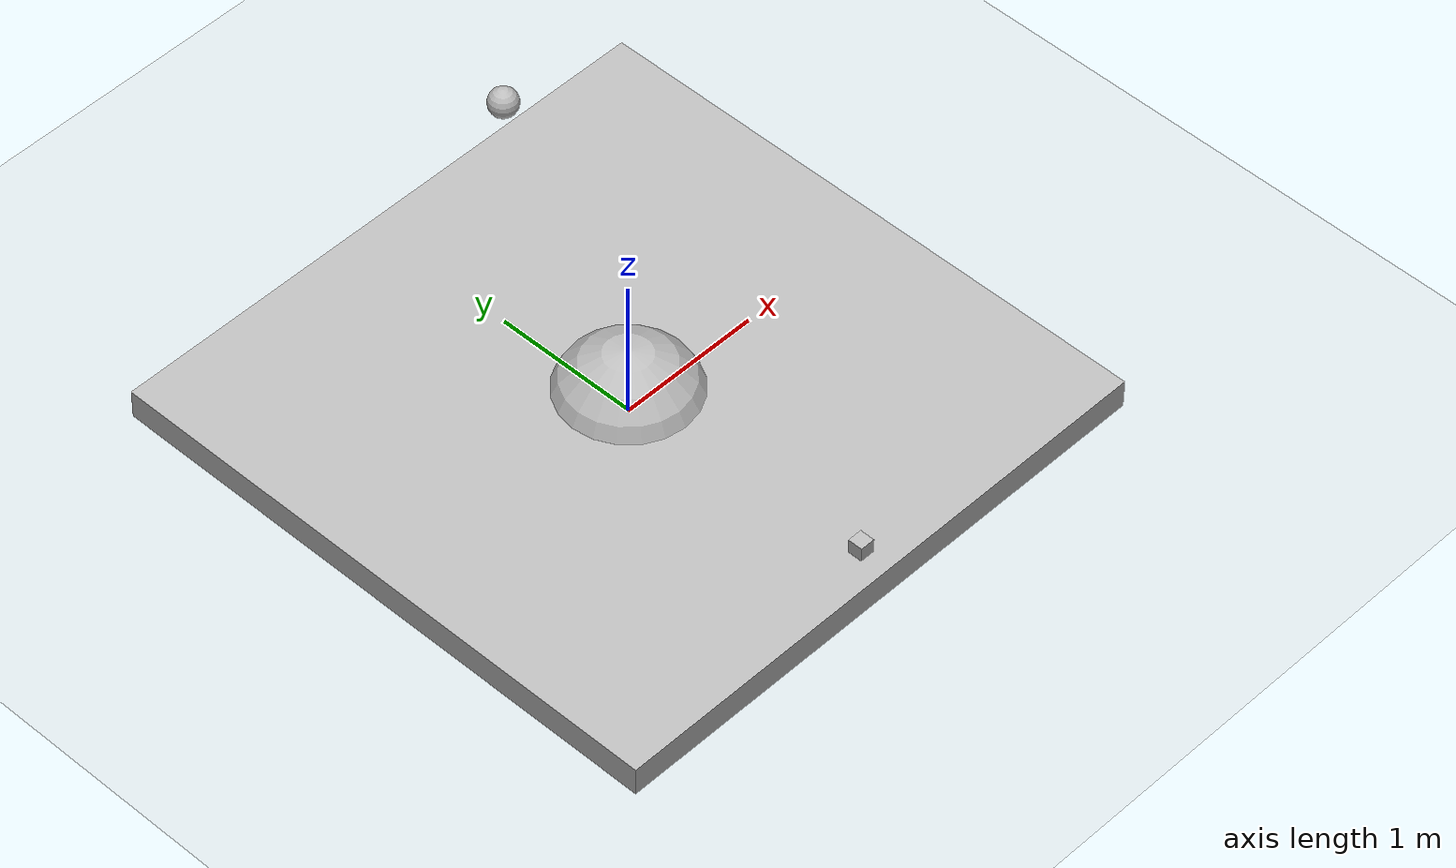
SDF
<?xml version="1.0"?>
<sdf version="1.7">
  <world name="default">
    <gui>
      <camera name="user">
        <pose>1 -8 5.6 0 0.6 1.58</pose>
      </camera>
    </gui>

    <include>
      <uri>model://ground_plane</uri>
    </include>
    <include>
      <uri>model://sun</uri>
    </include>
    <include>
      <uri>model://camera</uri>
      <pose>0 -1.8 0.25 0 0 1.57</pose>
    </include>

    <frame name="F_sphere_sensor_target">
      <pose>4 3 0.5 0 0 0</pose>
    </frame>

    <model name="sphere_sensor_target">
      <pose relative_to="F_sphere_sensor_target"/>
      <link name="L">
        <collision name="C">
          <geometry>
            <sphere>
              <radius>0.5</radius>
            </sphere>
          </geometry>
        </collision>
        <visual name="V">
          <geometry>
            <sphere>
              <radius>0.5</radius>
            </sphere>
          </geometry>
        </visual>
      </link>
    </model>

    <model name="M">
      <pose>0 0 0.2 0 0 0</pose>
      <link name="base">
        <pose>0 0 -0.1 0 0 0</pose>
        <inertial>
          <mass>12</mass>
          <inertia>
            <ixx>16.04</ixx>
            <ixy>0</ixy>
            <ixz>0</ixz>
            <iyy>16.04</iyy>
            <iyz>0</iyz>
            <izz>32</izz>
          </inertia>
        </inertial>
        <collision name="C">
          <geometry>
            <box>
              <size>4 4 0.2</size>
            </box>
          </geometry>
        </collision>
        <visual name="V">
          <geometry>
            <box>
              <size>4 4 0.2</size>
            </box>
          </geometry>
        </visual>
      </link>
      <frame name="F_L">
        <pose>-1.50 -1.50 0.2 0 0 0</pose>
      </frame>
      <frame name="F_lidar">
        <pose>-1.00 -1.00 0.2 0 0 0</pose>
      </frame>
      <frame name="F_LC">
        <pose>-0.50 -0.50 0.2 0 0 0</pose>
      </frame>
      <frame name="F_LL">
        <pose>0 0 0.2 0 0 0</pose>
      </frame>
      <frame name="F_gpu_lidar">
        <pose>0.50 0.50 0.2 0 0 0</pose>
      </frame>
      <frame name="F_LV">
        <pose>1.00 1.00 0.2 0 0 0</pose>
      </frame>
      <frame name="F_J">
        <pose>1.50 1.50 0.2 0 0 0</pose>
      </frame>
      <frame name="F_JS">
        <pose>1.75 1.75 0.2 0 0 0</pose>
      </frame>
      <link name="L">
        <pose relative_to="F_L">0 3.5 0 0 0 0</pose>
        <sensor name="lidar" type="lidar">
          <pose relative_to="F_lidar">0 3.0 0 0 0 0</pose>
          <visualize>true</visualize>
          <update_rate>30</update_rate>
          <always_on>1</always_on>
          <ray>
            <scan>
              <horizontal>
                <samples>51</samples>
                <resolution>1</resolution>
                <min_angle>-0.5</min_angle>
                <max_angle>0.5</max_angle>
              </horizontal>
            </scan>
            <range>
              <min>0.001</min>
              <max>10.0</max>
              <resolution>0.001</resolution>
            </range>
          </ray>
        </sensor>
        <collision name="LC">
          <pose relative_to="F_LC">0 2.5 0 0 0 0</pose>
          <geometry>
            <sphere>
              <radius>0.1</radius>
            </sphere>
          </geometry>
        </collision>
        <light name="LL" type="point">
          <pose relative_to="F_LL">0 2.0 0 0 0 0</pose>
        </light>
        <sensor name="gpu_lidar" type="gpu_lidar">
          <pose relative_to="F_gpu_lidar">0 1.5 0 0 0 0</pose>
          <visualize>true</visualize>
          <update_rate>30</update_rate>
          <always_on>1</always_on>
          <ray>
            <scan>
              <horizontal>
                <samples>640</samples>
                <resolution>1</resolution>
                <min_angle>-1.396263</min_angle>
                <max_angle>1.396263</max_angle>
              </horizontal>
            </scan>
            <range>
              <min>0.001</min>
              <max>10.0</max>
              <resolution>0.001</resolution>
            </range>
          </ray>
        </sensor>
        <visual name="LV">
          <pose relative_to="F_LV">0 1.0 0 0 0 0</pose>
          <geometry>
            <sphere>
              <radius>0.1</radius>
            </sphere>
          </geometry>
        </visual>
      </link>
      <joint name="J" type="fixed">
        <pose relative_to="F_J"> 0 0.5 0 0 0 0</pose>
        <parent>base</parent>
        <child>L</child>
        <sensor name="JS" type="force_torque">
          <pose relative_to="F_JS"> 0 0.25 0 0 0 0</pose>
          <always_on>1</always_on>
          <visualize>true</visualize>
          <update_rate>1000</update_rate>
          <force_torque>
            <frame>parent</frame>
          </force_torque>
        </sensor>
      </joint>
    </model>
  </world>
</sdf>

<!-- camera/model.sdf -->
<sdf version="1.5">
  <model name="camera">
    <pose>0 0 0.05 0 0 0</pose>
    <link name="link">
      <inertial>
        <mass>0.1</mass>
        <inertia>
          <ixx>0.000166667</ixx>
          <iyy>0.000166667</iyy>
          <izz>0.000166667</izz>
        </inertia>
      </inertial>
      <collision name="collision">
        <geometry>
          <box>
            <size>0.1 0.1 0.1</size>
          </box>
        </geometry>
      </collision>
      <visual name="visual">
        <geometry>
          <box>
            <size>0.1 0.1 0.1</size>
          </box>
        </geometry>
      </visual>
      <sensor name="camera" type="camera">
        <camera>
          <horizontal_fov>1.047</horizontal_fov>
          <image>
            <width>320</width>
            <height>240</height>
          </image>
          <clip>
            <near>0.1</near>
            <far>100</far>
          </clip>
        </camera>
        <always_on>1</always_on>
        <update_rate>30</update_rate>
        <visualize>true</visualize>
      </sensor>
    </link>
  </model>
</sdf>
